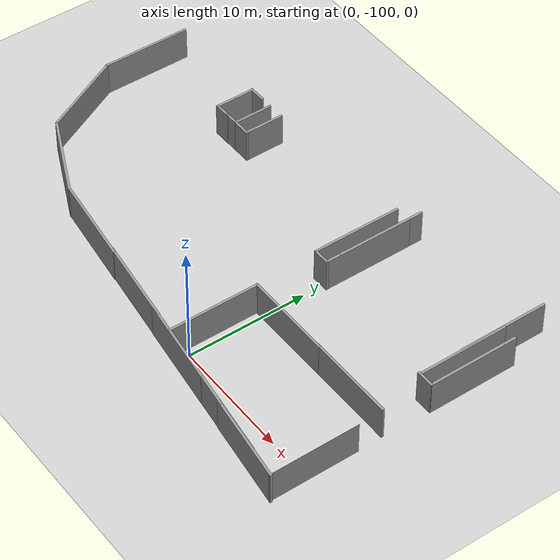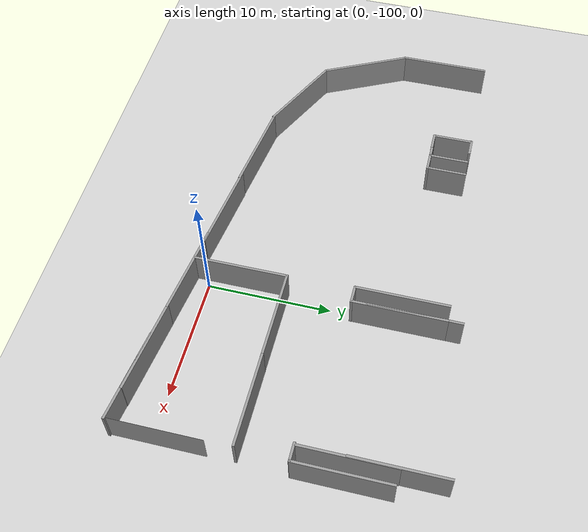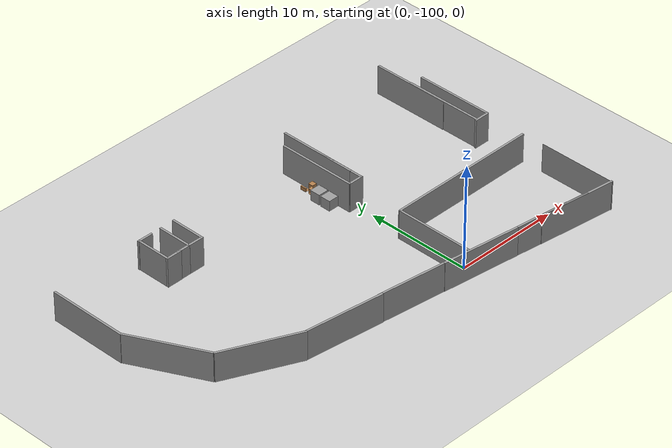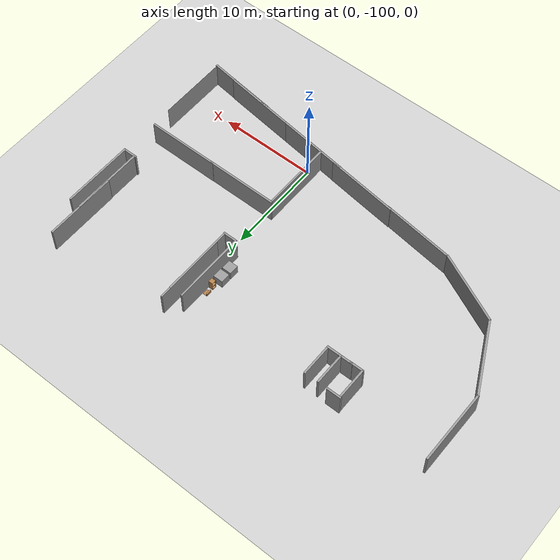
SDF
<sdf version="1.7">
 <world name="default">
  <model name="ground_plane">
   <static>1</static>
   <link name="link">
    <collision name="collision">
     <geometry><plane><normal>0 0 1</normal><size>100 100</size></plane></geometry>
     <surface>
      <contact><collide_bitmask>65535</collide_bitmask></contact>
      <friction><ode><mu>100</mu><mu2>50</mu2></ode></friction>
     </surface>
    </collision>
    <visual name="visual">
     <cast_shadows>0</cast_shadows>
     <geometry><plane><normal>0 0 1</normal><size>100 100</size></plane></geometry>
     <material>
      <script><uri>file://media/materials/scripts/gazebo.material</uri><name>Gazebo/Grey</name></script>
     </material>
    </visual>
   </link>
  </model>
  <model name="grey_wall_0_clone_0_clone_clone_clone_clone_0">
   <static>1</static>
   <link name="link">
    <pose>0 0 1.4 0 -0 0</pose>
    <collision name="collision"><geometry><box><size>7.5 0.2 2.8</size></box></geometry></collision>
    <visual name="visual">
     <cast_shadows>0</cast_shadows>
     <geometry><box><size>7.5 0.2 2.8</size></box></geometry>
     <material>
      <script>
       <uri>model://grey_wall/materials/scripts</uri>
       <uri>model://grey_wall/materials/textures</uri>
       <name>vrc/grey_wall</name>
      </script>
     </material>
    </visual>
   </link>
   <pose>-0.908982 -84.5866 0 0 -0 1.5708</pose>
  </model>
  <model name="grey_wall_0_clone_0_clone_clone_clone_clone_1_clone">
   <static>1</static>
   <link name="link">
    <pose>0 0 1.4 0 -0 0</pose>
    <collision name="collision"><geometry><box><size>7.5 0.2 2.8</size></box></geometry></collision>
    <visual name="visual">
     <cast_shadows>0</cast_shadows>
     <geometry><box><size>7.5 0.2 2.8</size></box></geometry>
     <material>
      <script>
       <uri>model://grey_wall/materials/scripts</uri>
       <uri>model://grey_wall/materials/textures</uri>
       <name>vrc/grey_wall</name>
      </script>
     </material>
    </visual>
   </link>
   <pose>0.398894 -83.3905 0 0 -0 1.5708</pose>
  </model>
  <model name="grey_wall_0_clone_0_clone_clone_clone_clone_1_clone_0">
   <static>1</static>
   <link name="link">
    <pose>0 0 1.4 0 -0 0</pose>
    <collision name="collision"><geometry><box><size>7.5 0.2 2.8</size></box></geometry></collision>
    <visual name="visual">
     <cast_shadows>0</cast_shadows>
     <geometry><box><size>7.5 0.2 2.8</size></box></geometry>
     <material>
      <script>
       <uri>model://grey_wall/materials/scripts</uri>
       <uri>model://grey_wall/materials/textures</uri>
       <name>vrc/grey_wall</name>
      </script>
     </material>
    </visual>
   </link>
   <pose>0.404001 -84.552 0 0 -0 1.5708</pose>
  </model>
  <model name="half_grey_wall_clone_clone_clone_0_clone_clone_0_clone_clone_0_clone_0_clone_4_clone_1_clone">
   <link name="link">
    <pose>0 0 1.4 0 -0 0</pose>
    <inertial>
     <mass>1</mass>
     <inertia><ixx>1</ixx><ixy>0</ixy><ixz>0</ixz><iyy>1</iyy><iyz>0</iyz><izz>1</izz></inertia>
    </inertial>
    <visual name="visual">
     <cast_shadows>0</cast_shadows>
     <geometry><box><size>1.5 0.2 2.8</size></box></geometry>
     <material>
      <script>
       <uri>model://grey_wall/materials/scripts</uri>
       <uri>model://grey_wall/materials/textures</uri>
       <name>vrc/grey_wall</name>
      </script>
      <shader type="pixel"><normal_map>__default__</normal_map></shader>
      <ambient>1 1 1 1</ambient>
      <diffuse>1 1 1 1</diffuse>
      <specular>0 0 0 1</specular>
      <emissive>0 0 0 1</emissive>
     </material>
    </visual>
    <collision name="collision">
     <geometry><box><size>1.5 0.2 2.8</size></box></geometry>
     <surface>
      <friction>
       <ode><mu>1</mu><mu2>1</mu2><fdir1>0 0 0</fdir1><slip1>0</slip1><slip2>0</slip2></ode>
       <torsional>
        <coefficient>1</coefficient>
        <patch_radius>0</patch_radius>
        <surface_radius>0</surface_radius>
        <use_patch_radius>1</use_patch_radius>
        <ode><slip>0</slip></ode>
       </torsional>
      </friction>
      <bounce><restitution_coefficient>0</restitution_coefficient><threshold>1e+06</threshold></bounce>
      <contact>
       <collide_without_contact>0</collide_without_contact>
       <collide_without_contact_bitmask>1</collide_without_contact_bitmask>
       <collide_bitmask>1</collide_bitmask>
       <ode>
        <soft_cfm>0</soft_cfm>
        <soft_erp>0.2</soft_erp>
        <kp>1e+13</kp>
        <kd>1</kd>
        <max_vel>0.01</max_vel>
        <min_depth>0</min_depth>
       </ode>
       <bullet>
        <split_impulse>1</split_impulse>
        <split_impulse_penetration_threshold>-0.01</split_impulse_penetration_threshold>
        <soft_cfm>0</soft_cfm>
        <soft_erp>0.2</soft_erp>
        <kp>1e+13</kp>
        <kd>1</kd>
       </bullet>
      </contact>
     </surface>
    </collision>
   </link>
   <static>1</static>
   <pose>-0.229987 -88.2983 0 0 0 -3.13942</pose>
  </model>
  <model name="unit_box_0">
   <pose>-1.52432 -85.4672 0.499995 0 1e-05 0</pose>
   <link name="link">
    <inertial>
     <mass>1</mass>
     <inertia>
      <ixx>0.166667</ixx>
      <ixy>0</ixy>
      <ixz>0</ixz>
      <iyy>0.166667</iyy>
      <iyz>0</iyz>
      <izz>0.166667</izz>
     </inertia>
    </inertial>
    <collision name="collision"><geometry><box><size>1 1 1</size></box></geometry></collision>
    <visual name="visual">
     <geometry><box><size>1 1 1</size></box></geometry>
     <material>
      <script><name>Gazebo/Grey</name><uri>file://media/materials/scripts/gazebo.material</uri></script>
     </material>
    </visual>
   </link>
  </model>
  <model name="unit_box_0_clone">
   <pose>-1.54452 -86.6339 0.499995 -1e-05 -0 5e-06</pose>
   <link name="link">
    <inertial>
     <mass>1</mass>
     <inertia>
      <ixx>0.166667</ixx>
      <ixy>0</ixy>
      <ixz>0</ixz>
      <iyy>0.166667</iyy>
      <iyz>0</iyz>
      <izz>0.166667</izz>
     </inertia>
    </inertial>
    <collision name="collision"><geometry><box><size>1 1 1</size></box></geometry></collision>
    <visual name="visual">
     <geometry><box><size>1 1 1</size></box></geometry>
     <material>
      <script><name>Gazebo/Grey</name><uri>file://media/materials/scripts/gazebo.material</uri></script>
     </material>
    </visual>
   </link>
  </model>
  <model name="cabinet">
   <static>1</static>
   <link name="cabinet_bottom_plate">
    <inertial>
     <pose>0 0 -1 0 -0 0</pose>
     <inertia><ixx>2.05</ixx><ixy>0</ixy><ixz>0</ixz><iyy>2.05</iyy><iyz>0</iyz><izz>2.05</izz></inertia>
     <mass>25</mass>
    </inertial>
    <collision name="cabinet_bottom_plate_geom">
     <pose>0 0 0.01 0 -0 0</pose>
     <geometry><box><size>0.45 0.45 0.02</size></box></geometry>
    </collision>
    <visual name="cabinet_bottom_plate_geom_visual">
     <pose>0 0 0.01 0 -0 0</pose>
     <geometry><box><size>0.45 0.45 0.02</size></box></geometry>
     <material>
      <script><uri>file://media/materials/scripts/gazebo.material</uri><name>Gazebo/Wood</name></script>
     </material>
    </visual>
    <collision name="cabinet_bottom_plate_geom_cabinet_back_plate">
     <pose>0.235 0 0.51 0 -0 0</pose>
     <geometry><box><size>0.02 0.45 1.02</size></box></geometry>
    </collision>
    <visual name="cabinet_bottom_plate_geom_cabinet_back_plate_visual">
     <pose>0.235 0 0.51 0 -0 0</pose>
     <geometry><box><size>0.02 0.45 1.02</size></box></geometry>
     <material>
      <script><uri>file://media/materials/scripts/gazebo.material</uri><name>Gazebo/Wood</name></script>
     </material>
    </visual>
    <collision name="cabinet_bottom_plate_geom_cabinet_left_plate">
     <pose>0 0.235 0.51 0 -0 0</pose>
     <geometry><box><size>0.45 0.02 1.02</size></box></geometry>
    </collision>
    <visual name="cabinet_bottom_plate_geom_cabinet_left_plate_visual">
     <pose>0 0.235 0.51 0 -0 0</pose>
     <geometry><box><size>0.45 0.02 1.02</size></box></geometry>
     <material>
      <script><uri>file://media/materials/scripts/gazebo.material</uri><name>Gazebo/Wood</name></script>
     </material>
    </visual>
    <collision name="cabinet_bottom_plate_geom_cabinet_middle_plate">
     <pose>0 0 0.51 0 -0 0</pose>
     <geometry><box><size>0.45 0.45 0.02</size></box></geometry>
    </collision>
    <visual name="cabinet_bottom_plate_geom_cabinet_middle_plate_visual">
     <pose>0 0 0.51 0 -0 0</pose>
     <geometry><box><size>0.45 0.45 0.02</size></box></geometry>
     <material>
      <script><uri>file://media/materials/scripts/gazebo.material</uri><name>Gazebo/Wood</name></script>
     </material>
    </visual>
    <collision name="cabinet_bottom_plate_geom_cabinet_right_plate">
     <pose>0 -0.235 0.51 0 -0 0</pose>
     <geometry><box><size>0.45 0.02 1.02</size></box></geometry>
    </collision>
    <visual name="cabinet_bottom_plate_geom_cabinet_right_plate_visual">
     <pose>0 -0.235 0.51 0 -0 0</pose>
     <geometry><box><size>0.45 0.02 1.02</size></box></geometry>
     <material>
      <script><uri>file://media/materials/scripts/gazebo.material</uri><name>Gazebo/Wood</name></script>
     </material>
    </visual>
    <collision name="cabinet_bottom_plate_geom_cabinet_top_plate">
     <pose>0 0 1.01 0 -0 0</pose>
     <geometry><box><size>0.45 0.45 0.02</size></box></geometry>
    </collision>
    <visual name="cabinet_bottom_plate_geom_cabinet_top_plate_visual">
     <pose>0 0 1.01 0 -0 0</pose>
     <geometry><box><size>0.45 0.45 0.02</size></box></geometry>
     <material>
      <script><uri>file://media/materials/scripts/gazebo.material</uri><name>Gazebo/Wood</name></script>
     </material>
    </visual>
   </link>
   <pose>-1.28424 -84.4729 0 0 -0 0</pose>
  </model>
  <model name="half_grey_wall_clone_clone_0_clone_clone_clone_clone_1_clone_0_clone_0">
   <link name="link">
    <pose>0 0 1.4 0 -0 0</pose>
    <inertial>
     <mass>1</mass>
     <inertia><ixx>1</ixx><ixy>0</ixy><ixz>0</ixz><iyy>1</iyy><iyz>0</iyz><izz>1</izz></inertia>
    </inertial>
    <visual name="visual">
     <cast_shadows>0</cast_shadows>
     <geometry><box><size>3.3 0.2 2.8</size></box></geometry>
     <material>
      <script>
       <uri>model://grey_wall/materials/scripts</uri>
       <uri>model://grey_wall/materials/textures</uri>
       <name>vrc/grey_wall</name>
      </script>
      <shader type="pixel"><normal_map>__default__</normal_map></shader>
      <ambient>1 1 1 1</ambient>
      <diffuse>1 1 1 1</diffuse>
      <specular>0 0 0 1</specular>
      <emissive>0 0 0 1</emissive>
     </material>
    </visual>
    <collision name="collision">
     <geometry><box><size>3.3 0.2 2.8</size></box></geometry>
     <surface>
      <friction>
       <ode><mu>1</mu><mu2>1</mu2><fdir1>0 0 0</fdir1><slip1>0</slip1><slip2>0</slip2></ode>
       <torsional>
        <coefficient>1</coefficient>
        <patch_radius>0</patch_radius>
        <surface_radius>0</surface_radius>
        <use_patch_radius>1</use_patch_radius>
        <ode><slip>0</slip></ode>
       </torsional>
      </friction>
      <bounce><restitution_coefficient>0</restitution_coefficient><threshold>1e+06</threshold></bounce>
      <contact>
       <collide_without_contact>0</collide_without_contact>
       <collide_without_contact_bitmask>1</collide_without_contact_bitmask>
       <collide_bitmask>1</collide_bitmask>
       <ode>
        <soft_cfm>0</soft_cfm>
        <soft_erp>0.2</soft_erp>
        <kp>1e+13</kp>
        <kd>1</kd>
        <max_vel>0.01</max_vel>
        <min_depth>0</min_depth>
       </ode>
       <bullet>
        <split_impulse>1</split_impulse>
        <split_impulse_penetration_threshold>-0.01</split_impulse_penetration_threshold>
        <soft_cfm>0</soft_cfm>
        <soft_erp>0.2</soft_erp>
        <kp>1e+13</kp>
        <kd>1</kd>
       </bullet>
      </contact>
     </surface>
    </collision>
   </link>
   <static>1</static>
   <pose>-14.1287 -83.3175 -0 0 0 -1.56959</pose>
  </model>
  <model name="half_grey_wall_clone_clone_clone_0_clone_clone_0_clone_clone_0_clone_0_clone_4_clone_1_clone_clone">
   <link name="link">
    <pose>0 0 1.4 0 -0 0</pose>
    <inertial>
     <mass>1</mass>
     <inertia><ixx>1</ixx><ixy>0</ixy><ixz>0</ixz><iyy>1</iyy><iyz>0</iyz><izz>1</izz></inertia>
    </inertial>
    <visual name="visual">
     <cast_shadows>0</cast_shadows>
     <geometry><box><size>1.5 0.2 2.8</size></box></geometry>
     <material>
      <script>
       <uri>model://grey_wall/materials/scripts</uri>
       <uri>model://grey_wall/materials/textures</uri>
       <name>vrc/grey_wall</name>
      </script>
      <shader type="pixel"><normal_map>__default__</normal_map></shader>
      <ambient>1 1 1 1</ambient>
      <diffuse>1 1 1 1</diffuse>
      <specular>0 0 0 1</specular>
      <emissive>0 0 0 1</emissive>
     </material>
    </visual>
    <collision name="collision">
     <geometry><box><size>1.5 0.2 2.8</size></box></geometry>
     <surface>
      <friction>
       <ode><mu>1</mu><mu2>1</mu2><fdir1>0 0 0</fdir1><slip1>0</slip1><slip2>0</slip2></ode>
       <torsional>
        <coefficient>1</coefficient>
        <patch_radius>0</patch_radius>
        <surface_radius>0</surface_radius>
        <use_patch_radius>1</use_patch_radius>
        <ode><slip>0</slip></ode>
       </torsional>
      </friction>
      <bounce><restitution_coefficient>0</restitution_coefficient><threshold>1e+06</threshold></bounce>
      <contact>
       <collide_without_contact>0</collide_without_contact>
       <collide_without_contact_bitmask>1</collide_without_contact_bitmask>
       <collide_bitmask>1</collide_bitmask>
       <ode>
        <soft_cfm>0</soft_cfm>
        <soft_erp>0.2</soft_erp>
        <kp>1e+13</kp>
        <kd>1</kd>
        <max_vel>0.01</max_vel>
        <min_depth>0</min_depth>
       </ode>
       <bullet>
        <split_impulse>1</split_impulse>
        <split_impulse_penetration_threshold>-0.01</split_impulse_penetration_threshold>
        <soft_cfm>0</soft_cfm>
        <soft_erp>0.2</soft_erp>
        <kp>1e+13</kp>
        <kd>1</kd>
       </bullet>
      </contact>
     </surface>
    </collision>
   </link>
   <static>1</static>
   <pose>-14.7739 -84.9454 0 0 0 -3.13942</pose>
  </model>
  <model name="half_grey_wall_clone_clone_0_clone_clone_clone_clone_1_clone_0_clone_0_clone">
   <link name="link">
    <pose>0 0 1.4 0 -0 0</pose>
    <inertial>
     <mass>1</mass>
     <inertia><ixx>1</ixx><ixy>0</ixy><ixz>0</ixz><iyy>1</iyy><iyz>0</iyz><izz>1</izz></inertia>
    </inertial>
    <visual name="visual">
     <cast_shadows>0</cast_shadows>
     <geometry><box><size>3.3 0.2 2.8</size></box></geometry>
     <material>
      <script>
       <uri>model://grey_wall/materials/scripts</uri>
       <uri>model://grey_wall/materials/textures</uri>
       <name>vrc/grey_wall</name>
      </script>
      <shader type="pixel"><normal_map>__default__</normal_map></shader>
      <ambient>1 1 1 1</ambient>
      <diffuse>1 1 1 1</diffuse>
      <specular>0 0 0 1</specular>
      <emissive>0 0 0 1</emissive>
     </material>
    </visual>
    <collision name="collision">
     <geometry><box><size>3.3 0.2 2.8</size></box></geometry>
     <surface>
      <friction>
       <ode><mu>1</mu><mu2>1</mu2><fdir1>0 0 0</fdir1><slip1>0</slip1><slip2>0</slip2></ode>
       <torsional>
        <coefficient>1</coefficient>
        <patch_radius>0</patch_radius>
        <surface_radius>0</surface_radius>
        <use_patch_radius>1</use_patch_radius>
        <ode><slip>0</slip></ode>
       </torsional>
      </friction>
      <bounce><restitution_coefficient>0</restitution_coefficient><threshold>1e+06</threshold></bounce>
      <contact>
       <collide_without_contact>0</collide_without_contact>
       <collide_without_contact_bitmask>1</collide_without_contact_bitmask>
       <collide_bitmask>1</collide_bitmask>
       <ode>
        <soft_cfm>0</soft_cfm>
        <soft_erp>0.2</soft_erp>
        <kp>1e+13</kp>
        <kd>1</kd>
        <max_vel>0.01</max_vel>
        <min_depth>0</min_depth>
       </ode>
       <bullet>
        <split_impulse>1</split_impulse>
        <split_impulse_penetration_threshold>-0.01</split_impulse_penetration_threshold>
        <soft_cfm>0</soft_cfm>
        <soft_erp>0.2</soft_erp>
        <kp>1e+13</kp>
        <kd>1</kd>
       </bullet>
      </contact>
     </surface>
    </collision>
   </link>
   <static>1</static>
   <pose>-15.5344 -83.3565 -0 0 0 -1.56959</pose>
  </model>
  <model name="wooden_case_metal_peg">
   <frame name="wooden_case::__model__" attached_to="wooden_case::base">
    <pose relative_to="__model__">0 0 0 0 -0 0</pose>
   </frame>
   <link name="wooden_case::base">
    <pose relative_to="wooden_case::__model__">0 0 0.024 0 -0 0</pose>
    <inertial>
     <pose>-0.022184 0 0.171592 0 -0 0</pose>
     <mass>3.96264</mass>
     <inertia>
      <ixx>0.213536</ixx>
      <ixy>0</ixy>
      <ixz>0.000779377</ixz>
      <iyy>0.0708943</iyy>
      <iyz>0</iyz>
      <izz>0.154604</izz>
     </inertia>
    </inertial>
    <collision name="collision_back">
     <pose>-0.053975 0 0.1778 0 -0 0</pose>
     <geometry><box><size>0.01905 0.5461 0.3175</size></box></geometry>
     <surface>
      <contact>
       <poissons_ratio>0.347</poissons_ratio>
       <elastic_modulus>8.8e+09</elastic_modulus>
       <ode><kp>100000</kp><kd>100</kd><max_vel>100</max_vel><min_depth>0.001</min_depth></ode>
      </contact>
      <friction>
       <torsional>
        <coefficient>1</coefficient>
        <use_patch_radius>0</use_patch_radius>
        <surface_radius>0.01</surface_radius>
       </torsional>
      </friction>
     </surface>
    </collision>
    <visual name="visual_back">
     <pose>-0.053975 0 0.1778 0 -0 0</pose>
     <geometry><box><size>0.01905 0.5461 0.3175</size></box></geometry>
     <material>
      <script><uri>file://media/materials/scripts/gazebo.material</uri><name>Gazebo/Wood</name></script>
     </material>
    </visual>
    <collision name="collision_bottom">
     <pose>0 0 0.009525 0 -0 0</pose>
     <geometry><box><size>0.127 0.5842 0.01905</size></box></geometry>
     <surface>
      <contact>
       <poissons_ratio>0.347</poissons_ratio>
       <elastic_modulus>8.8e+09</elastic_modulus>
       <ode><kp>100000</kp><kd>100</kd><max_vel>100</max_vel><min_depth>0.001</min_depth></ode>
      </contact>
      <friction>
       <torsional>
        <coefficient>1</coefficient>
        <use_patch_radius>0</use_patch_radius>
        <surface_radius>0.01</surface_radius>
       </torsional>
      </friction>
     </surface>
    </collision>
    <visual name="visual_bottom">
     <pose>0 0 0.009525 0 -0 0</pose>
     <geometry><box><size>0.127 0.5842 0.01905</size></box></geometry>
     <material>
      <script><uri>file://media/materials/scripts/gazebo.material</uri><name>Gazebo/Wood</name></script>
     </material>
    </visual>
    <collision name="collision_top">
     <pose>0 0 0.346075 0 -0 0</pose>
     <geometry><box><size>0.127 0.5842 0.01905</size></box></geometry>
     <surface>
      <contact>
       <poissons_ratio>0.347</poissons_ratio>
       <elastic_modulus>8.8e+09</elastic_modulus>
       <ode><kp>100000</kp><kd>100</kd><max_vel>100</max_vel><min_depth>0.001</min_depth></ode>
      </contact>
      <friction>
       <torsional>
        <coefficient>1</coefficient>
        <use_patch_radius>0</use_patch_radius>
        <surface_radius>0.01</surface_radius>
       </torsional>
      </friction>
     </surface>
    </collision>
    <visual name="visual_top">
     <pose>0 0 0.346075 0 -0 0</pose>
     <geometry><box><size>0.127 0.5842 0.01905</size></box></geometry>
     <material>
      <script><uri>file://media/materials/scripts/gazebo.material</uri><name>Gazebo/Wood</name></script>
     </material>
    </visual>
    <collision name="collision_left">
     <pose>0 -0.282575 0.1778 0 -0 0</pose>
     <geometry><box><size>0.127 0.01905 0.3175</size></box></geometry>
     <surface>
      <contact>
       <poissons_ratio>0.347</poissons_ratio>
       <elastic_modulus>8.8e+09</elastic_modulus>
       <ode><kp>100000</kp><kd>100</kd><max_vel>100</max_vel><min_depth>0.001</min_depth></ode>
      </contact>
      <friction>
       <torsional>
        <coefficient>1</coefficient>
        <use_patch_radius>0</use_patch_radius>
        <surface_radius>0.01</surface_radius>
       </torsional>
      </friction>
     </surface>
    </collision>
    <visual name="visual_left">
     <pose>0 -0.282575 0.1778 0 -0 0</pose>
     <geometry><box><size>0.127 0.01905 0.3175</size></box></geometry>
     <material>
      <script><uri>file://media/materials/scripts/gazebo.material</uri><name>Gazebo/Wood</name></script>
     </material>
    </visual>
    <collision name="collision_right">
     <pose>0 0.282575 0.1778 0 -0 0</pose>
     <geometry><box><size>0.127 0.01905 0.3175</size></box></geometry>
     <surface>
      <contact>
       <poissons_ratio>0.347</poissons_ratio>
       <elastic_modulus>8.8e+09</elastic_modulus>
       <ode><kp>100000</kp><kd>100</kd><max_vel>100</max_vel><min_depth>0.001</min_depth></ode>
      </contact>
      <friction>
       <torsional>
        <coefficient>1</coefficient>
        <use_patch_radius>0</use_patch_radius>
        <surface_radius>0.01</surface_radius>
       </torsional>
      </friction>
     </surface>
    </collision>
    <visual name="visual_right">
     <pose>0 0.282575 0.1778 0 -0 0</pose>
     <geometry><box><size>0.127 0.01905 0.3175</size></box></geometry>
     <material>
      <script><uri>file://media/materials/scripts/gazebo.material</uri><name>Gazebo/Wood</name></script>
     </material>
    </visual>
    <collision name="collision_block_left">
     <pose>0.0095 -0.2151 -0.012 0 -0 0</pose>
     <geometry><box><size>0.108 0.05 0.024</size></box></geometry>
     <surface>
      <contact>
       <poissons_ratio>0.347</poissons_ratio>
       <elastic_modulus>8.8e+09</elastic_modulus>
       <ode><kp>100000</kp><kd>100</kd><max_vel>100</max_vel><min_depth>0.001</min_depth></ode>
      </contact>
      <friction>
       <torsional>
        <coefficient>1</coefficient>
        <use_patch_radius>0</use_patch_radius>
        <surface_radius>0.01</surface_radius>
       </torsional>
      </friction>
     </surface>
    </collision>
    <visual name="visual_block_left">
     <pose>0.0095 -0.2151 -0.012 0 -0 0</pose>
     <geometry><box><size>0.108 0.05 0.024</size></box></geometry>
     <material>
      <script><uri>file://media/materials/scripts/gazebo.material</uri><name>Gazebo/Wood</name></script>
     </material>
    </visual>
    <collision name="collision_block_right">
     <pose>0.0095 0.2151 -0.012 0 -0 0</pose>
     <geometry><box><size>0.108 0.05 0.024</size></box></geometry>
     <surface>
      <contact>
       <poissons_ratio>0.347</poissons_ratio>
       <elastic_modulus>8.8e+09</elastic_modulus>
       <ode><kp>100000</kp><kd>100</kd><max_vel>100</max_vel><min_depth>0.001</min_depth></ode>
      </contact>
      <friction>
       <torsional>
        <coefficient>1</coefficient>
        <use_patch_radius>0</use_patch_radius>
        <surface_radius>0.01</surface_radius>
       </torsional>
      </friction>
     </surface>
    </collision>
    <visual name="visual_block_right">
     <pose>0.0095 0.2151 -0.012 0 -0 0</pose>
     <geometry><box><size>0.108 0.05 0.024</size></box></geometry>
     <material>
      <script><uri>file://media/materials/scripts/gazebo.material</uri><name>Gazebo/Wood</name></script>
     </material>
    </visual>
   </link>
   <link name="wooden_case::lid">
    <pose relative_to="wooden_case::__model__">0.243775 0 0.009525 0 -0 0</pose>
    <inertial>
     <mass>1.97874</mass>
     <inertia>
      <ixx>0.0563367</ixx>
      <ixy>0</ixy>
      <ixz>0</ixz>
      <iyy>0.020911</iyy>
      <iyz>0</iyz>
      <izz>0.0771281</izz>
     </inertia>
    </inertial>
    <collision name="collision">
     <geometry><box><size>0.3556 0.5842 0.01905</size></box></geometry>
     <surface>
      <contact>
       <poissons_ratio>0.347</poissons_ratio>
       <elastic_modulus>8.8e+09</elastic_modulus>
       <ode><kp>100000</kp><kd>100</kd><max_vel>100</max_vel><min_depth>0.001</min_depth></ode>
      </contact>
      <friction>
       <torsional>
        <coefficient>1</coefficient>
        <use_patch_radius>0</use_patch_radius>
        <surface_radius>0.01</surface_radius>
       </torsional>
      </friction>
     </surface>
    </collision>
    <visual name="visual">
     <geometry><box><size>0.3556 0.5842 0.01905</size></box></geometry>
     <material>
      <script><uri>file://media/materials/scripts/gazebo.material</uri><name>Gazebo/Wood</name></script>
     </material>
    </visual>
    <visual name="tee_nut_1">
     <pose>0.122 -0.216 0 0 -0 0</pose>
     <geometry><cylinder><radius>0.00635</radius><length>0.0192405</length></cylinder></geometry>
     <material>
      <script><uri>file://media/materials/scripts/gazebo.material</uri><name>Gazebo/Grey</name></script>
     </material>
    </visual>
    <visual name="tee_nut_2">
     <pose>0.122 -0.088 0 0 -0 0</pose>
     <geometry><cylinder><radius>0.00635</radius><length>0.0192405</length></cylinder></geometry>
     <material>
      <script><uri>file://media/materials/scripts/gazebo.material</uri><name>Gazebo/Grey</name></script>
     </material>
    </visual>
    <visual name="tee_nut_3">
     <pose>0.122 0.088 0 0 -0 0</pose>
     <geometry><cylinder><radius>0.00635</radius><length>0.0192405</length></cylinder></geometry>
     <material>
      <script><uri>file://media/materials/scripts/gazebo.material</uri><name>Gazebo/Grey</name></script>
     </material>
    </visual>
    <visual name="tee_nut_4">
     <pose>0.122 0.216 0 0 -0 0</pose>
     <geometry><cylinder><radius>0.00635</radius><length>0.0192405</length></cylinder></geometry>
     <material>
      <script><uri>file://media/materials/scripts/gazebo.material</uri><name>Gazebo/Grey</name></script>
     </material>
    </visual>
   </link>
   <joint name="wooden_case::lid_hinge" type="revolute">
    <pose>-0.1778 0 0.01905 0 -0 0</pose>
    <parent>wooden_case::base</parent>
    <child>wooden_case::lid</child>
    <axis>
     <xyz>0 1 0</xyz>
     <limit><upper>0.523599</upper><lower>-1.5708</lower></limit>
     <dynamics><spring_reference>0</spring_reference><spring_stiffness>0</spring_stiffness></dynamics>
    </axis>
   </joint>
   <frame name="peg::__model__" attached_to="peg::link">
    <pose relative_to="__model__">0.365774 0.216 0.01905 0 -0 0</pose>
   </frame>
   <link name="peg::link">
    <pose relative_to="peg::__model__">0 0 0.031 0 -0 0</pose>
    <inertial>
     <mass>0.0121</mass>
     <inertia>
      <ixx>3.90898e-06</ixx>
      <ixy>0</ixy>
      <ixz>0</ixz>
      <iyy>3.90898e-06</iyy>
      <iyz>0</iyz>
      <izz>6.58845e-08</izz>
     </inertia>
    </inertial>
    <collision name="collision">
     <geometry><cylinder><radius>0.0033</radius><length>0.062</length></cylinder></geometry>
     <surface>
      <contact>
       <poissons_ratio>0.305</poissons_ratio>
       <elastic_modulus>2e+11</elastic_modulus>
       <ode><kp>100000</kp><kd>100</kd><max_vel>100</max_vel><min_depth>0.001</min_depth></ode>
      </contact>
      <friction>
       <torsional>
        <coefficient>1</coefficient>
        <use_patch_radius>0</use_patch_radius>
        <surface_radius>0.01</surface_radius>
       </torsional>
      </friction>
     </surface>
    </collision>
    <visual name="visual">
     <geometry><cylinder><radius>0.0033</radius><length>0.062</length></cylinder></geometry>
     <material>
      <script><uri>file://media/materials/scripts/gazebo.material</uri><name>Gazebo/Grey</name></script>
     </material>
    </visual>
   </link>
   <joint name="case_peg" type="revolute">
    <child>peg::link</child>
    <parent>wooden_case::lid</parent>
    <axis>
     <xyz>0 0 1</xyz>
     <limit><upper>0</upper><lower>0</lower></limit>
     <dynamics><spring_reference>0</spring_reference><spring_stiffness>0</spring_stiffness></dynamics>
    </axis>
   </joint>
   <pose>-1.50003 -83.6624 -0.001057 -0 -0.000426 2e-06</pose>
  </model>
  <model name="half_grey_wall_clone_clone_clone_0_clone_clone_0_clone_clone_0_clone_0_clone_4_clone_1_clone_clone_clone_clone_0">
   <link name="link">
    <pose>0 0 1.4 0 -0 0</pose>
    <inertial>
     <mass>1</mass>
     <inertia><ixx>1</ixx><ixy>0</ixy><ixz>0</ixz><iyy>1</iyy><iyz>0</iyz><izz>1</izz></inertia>
    </inertial>
    <visual name="visual">
     <cast_shadows>0</cast_shadows>
     <geometry><box><size>1.5 0.2 2.8</size></box></geometry>
     <material>
      <script>
       <uri>model://grey_wall/materials/scripts</uri>
       <uri>model://grey_wall/materials/textures</uri>
       <name>vrc/grey_wall</name>
      </script>
      <shader type="pixel"><normal_map>__default__</normal_map></shader>
      <ambient>1 1 1 1</ambient>
      <diffuse>1 1 1 1</diffuse>
      <specular>0 0 0 1</specular>
      <emissive>0 0 0 1</emissive>
     </material>
    </visual>
    <collision name="collision">
     <geometry><box><size>1.5 0.2 2.8</size></box></geometry>
     <surface>
      <friction>
       <ode><mu>1</mu><mu2>1</mu2><fdir1>0 0 0</fdir1><slip1>0</slip1><slip2>0</slip2></ode>
       <torsional>
        <coefficient>1</coefficient>
        <patch_radius>0</patch_radius>
        <surface_radius>0</surface_radius>
        <use_patch_radius>1</use_patch_radius>
        <ode><slip>0</slip></ode>
       </torsional>
      </friction>
      <bounce><restitution_coefficient>0</restitution_coefficient><threshold>1e+06</threshold></bounce>
      <contact>
       <collide_without_contact>0</collide_without_contact>
       <collide_without_contact_bitmask>1</collide_without_contact_bitmask>
       <collide_bitmask>1</collide_bitmask>
       <ode>
        <soft_cfm>0</soft_cfm>
        <soft_erp>0.2</soft_erp>
        <kp>1e+13</kp>
        <kd>1</kd>
        <max_vel>0.01</max_vel>
        <min_depth>0</min_depth>
       </ode>
       <bullet>
        <split_impulse>1</split_impulse>
        <split_impulse_penetration_threshold>-0.01</split_impulse_penetration_threshold>
        <soft_cfm>0</soft_cfm>
        <soft_erp>0.2</soft_erp>
        <kp>1e+13</kp>
        <kd>1</kd>
       </bullet>
      </contact>
     </surface>
    </collision>
   </link>
   <static>1</static>
   <pose>-17.2396 -81.7596 0 0 0 -3.13942</pose>
  </model>
  <model name="half_grey_wall_clone_clone_0_clone_clone_clone_clone_1_clone_0_clone_0_clone_clone">
   <link name="link">
    <pose>0 0 1.4 0 -0 0</pose>
    <inertial>
     <mass>1</mass>
     <inertia><ixx>1</ixx><ixy>0</ixy><ixz>0</ixz><iyy>1</iyy><iyz>0</iyz><izz>1</izz></inertia>
    </inertial>
    <visual name="visual">
     <cast_shadows>0</cast_shadows>
     <geometry><box><size>3.3 0.2 2.8</size></box></geometry>
     <material>
      <script>
       <uri>model://grey_wall/materials/scripts</uri>
       <uri>model://grey_wall/materials/textures</uri>
       <name>vrc/grey_wall</name>
      </script>
      <shader type="pixel"><normal_map>__default__</normal_map></shader>
      <ambient>1 1 1 1</ambient>
      <diffuse>1 1 1 1</diffuse>
      <specular>0 0 0 1</specular>
      <emissive>0 0 0 1</emissive>
     </material>
    </visual>
    <collision name="collision">
     <geometry><box><size>3.3 0.2 2.8</size></box></geometry>
     <surface>
      <friction>
       <ode><mu>1</mu><mu2>1</mu2><fdir1>0 0 0</fdir1><slip1>0</slip1><slip2>0</slip2></ode>
       <torsional>
        <coefficient>1</coefficient>
        <patch_radius>0</patch_radius>
        <surface_radius>0</surface_radius>
        <use_patch_radius>1</use_patch_radius>
        <ode><slip>0</slip></ode>
       </torsional>
      </friction>
      <bounce><restitution_coefficient>0</restitution_coefficient><threshold>1e+06</threshold></bounce>
      <contact>
       <collide_without_contact>0</collide_without_contact>
       <collide_without_contact_bitmask>1</collide_without_contact_bitmask>
       <collide_bitmask>1</collide_bitmask>
       <ode>
        <soft_cfm>0</soft_cfm>
        <soft_erp>0.2</soft_erp>
        <kp>1e+13</kp>
        <kd>1</kd>
        <max_vel>0.01</max_vel>
        <min_depth>0</min_depth>
       </ode>
       <bullet>
        <split_impulse>1</split_impulse>
        <split_impulse_penetration_threshold>-0.01</split_impulse_penetration_threshold>
        <soft_cfm>0</soft_cfm>
        <soft_erp>0.2</soft_erp>
        <kp>1e+13</kp>
        <kd>1</kd>
       </bullet>
      </contact>
     </surface>
    </collision>
   </link>
   <static>1</static>
   <pose>-17.8579 -83.3319 -0 0 0 -1.56959</pose>
  </model>
  <model name="half_grey_wall_clone_clone_clone_0_clone_clone_0_clone_clone_0_clone_0_clone_4_clone_1_clone_clone_clone_0">
   <link name="link">
    <pose>0 0 1.4 0 -0 0</pose>
    <inertial>
     <mass>1</mass>
     <inertia><ixx>1</ixx><ixy>0</ixy><ixz>0</ixz><iyy>1</iyy><iyz>0</iyz><izz>1</izz></inertia>
    </inertial>
    <visual name="visual">
     <cast_shadows>0</cast_shadows>
     <geometry><box><size>1.5 0.2 2.8</size></box></geometry>
     <material>
      <script>
       <uri>model://grey_wall/materials/scripts</uri>
       <uri>model://grey_wall/materials/textures</uri>
       <name>vrc/grey_wall</name>
      </script>
      <shader type="pixel"><normal_map>__default__</normal_map></shader>
      <ambient>1 1 1 1</ambient>
      <diffuse>1 1 1 1</diffuse>
      <specular>0 0 0 1</specular>
      <emissive>0 0 0 1</emissive>
     </material>
    </visual>
    <collision name="collision">
     <geometry><box><size>1.5 0.2 2.8</size></box></geometry>
     <surface>
      <friction>
       <ode><mu>1</mu><mu2>1</mu2><fdir1>0 0 0</fdir1><slip1>0</slip1><slip2>0</slip2></ode>
       <torsional>
        <coefficient>1</coefficient>
        <patch_radius>0</patch_radius>
        <surface_radius>0</surface_radius>
        <use_patch_radius>1</use_patch_radius>
        <ode><slip>0</slip></ode>
       </torsional>
      </friction>
      <bounce><restitution_coefficient>0</restitution_coefficient><threshold>1e+06</threshold></bounce>
      <contact>
       <collide_without_contact>0</collide_without_contact>
       <collide_without_contact_bitmask>1</collide_without_contact_bitmask>
       <collide_bitmask>1</collide_bitmask>
       <ode>
        <soft_cfm>0</soft_cfm>
        <soft_erp>0.2</soft_erp>
        <kp>1e+13</kp>
        <kd>1</kd>
        <max_vel>0.01</max_vel>
        <min_depth>0</min_depth>
       </ode>
       <bullet>
        <split_impulse>1</split_impulse>
        <split_impulse_penetration_threshold>-0.01</split_impulse_penetration_threshold>
        <soft_cfm>0</soft_cfm>
        <soft_erp>0.2</soft_erp>
        <kp>1e+13</kp>
        <kd>1</kd>
       </bullet>
      </contact>
     </surface>
    </collision>
   </link>
   <static>1</static>
   <pose>-16.0576 -84.9477 0 0 0 -3.13942</pose>
  </model>
  <model name="half_grey_wall_clone_clone_clone_0_clone_clone_0_clone_clone_0_clone_0_clone_4_clone_1_clone_clone_clone_1">
   <link name="link">
    <pose>0 0 1.4 0 -0 0</pose>
    <inertial>
     <mass>1</mass>
     <inertia><ixx>1</ixx><ixy>0</ixy><ixz>0</ixz><iyy>1</iyy><iyz>0</iyz><izz>1</izz></inertia>
    </inertial>
    <visual name="visual">
     <cast_shadows>0</cast_shadows>
     <geometry><box><size>1.5 0.2 2.8</size></box></geometry>
     <material>
      <script>
       <uri>model://grey_wall/materials/scripts</uri>
       <uri>model://grey_wall/materials/textures</uri>
       <name>vrc/grey_wall</name>
      </script>
      <shader type="pixel"><normal_map>__default__</normal_map></shader>
      <ambient>1 1 1 1</ambient>
      <diffuse>1 1 1 1</diffuse>
      <specular>0 0 0 1</specular>
      <emissive>0 0 0 1</emissive>
     </material>
    </visual>
    <collision name="collision">
     <geometry><box><size>1.5 0.2 2.8</size></box></geometry>
     <surface>
      <friction>
       <ode><mu>1</mu><mu2>1</mu2><fdir1>0 0 0</fdir1><slip1>0</slip1><slip2>0</slip2></ode>
       <torsional>
        <coefficient>1</coefficient>
        <patch_radius>0</patch_radius>
        <surface_radius>0</surface_radius>
        <use_patch_radius>1</use_patch_radius>
        <ode><slip>0</slip></ode>
       </torsional>
      </friction>
      <bounce><restitution_coefficient>0</restitution_coefficient><threshold>1e+06</threshold></bounce>
      <contact>
       <collide_without_contact>0</collide_without_contact>
       <collide_without_contact_bitmask>1</collide_without_contact_bitmask>
       <collide_bitmask>1</collide_bitmask>
       <ode>
        <soft_cfm>0</soft_cfm>
        <soft_erp>0.2</soft_erp>
        <kp>1e+13</kp>
        <kd>1</kd>
        <max_vel>0.01</max_vel>
        <min_depth>0</min_depth>
       </ode>
       <bullet>
        <split_impulse>1</split_impulse>
        <split_impulse_penetration_threshold>-0.01</split_impulse_penetration_threshold>
        <soft_cfm>0</soft_cfm>
        <soft_erp>0.2</soft_erp>
        <kp>1e+13</kp>
        <kd>1</kd>
       </bullet>
      </contact>
     </surface>
    </collision>
   </link>
   <static>1</static>
   <pose>-17.2077 -84.9772 0 0 0 -3.13942</pose>
  </model>
  <model name="grey_wall_0_clone_0_clone_clone_0_clone_0">
   <static>1</static>
   <link name="link">
    <pose>0 0 1.4 0 -0 0</pose>
    <collision name="collision"><geometry><box><size>7.5 0.2 2.8</size></box></geometry></collision>
    <visual name="visual">
     <cast_shadows>0</cast_shadows>
     <geometry><box><size>7.5 0.2 2.8</size></box></geometry>
     <material>
      <script>
       <uri>model://grey_wall/materials/scripts</uri>
       <uri>model://grey_wall/materials/textures</uri>
       <name>vrc/grey_wall</name>
      </script>
     </material>
    </visual>
   </link>
   <pose>-26.8378 -85.5501 0 0 -0 1.5708</pose>
  </model>
  <model name="grey_wall_0_clone_0_clone_clone_0_clone_0_clone">
   <static>1</static>
   <link name="link">
    <pose>0 0 1.4 0 -0 0</pose>
    <collision name="collision"><geometry><box><size>7.5 0.2 2.8</size></box></geometry></collision>
    <visual name="visual">
     <cast_shadows>0</cast_shadows>
     <geometry><box><size>7.5 0.2 2.8</size></box></geometry>
     <material>
      <script>
       <uri>model://grey_wall/materials/scripts</uri>
       <uri>model://grey_wall/materials/textures</uri>
       <name>vrc/grey_wall</name>
      </script>
     </material>
    </visual>
   </link>
   <pose>-25.1515 -92.5766 0 0 -0 2.03363</pose>
  </model>
  <model name="grey_wall_0_clone_0_clone_clone_0_clone_0_clone_clone">
   <static>1</static>
   <link name="link">
    <pose>0 0 1.4 0 -0 0</pose>
    <collision name="collision"><geometry><box><size>7.5 0.2 2.8</size></box></geometry></collision>
    <visual name="visual">
     <cast_shadows>0</cast_shadows>
     <geometry><box><size>7.5 0.2 2.8</size></box></geometry>
     <material>
      <script>
       <uri>model://grey_wall/materials/scripts</uri>
       <uri>model://grey_wall/materials/textures</uri>
       <name>vrc/grey_wall</name>
      </script>
     </material>
    </visual>
   </link>
   <pose>-20.0953 -97.541 0 0 -0 2.70421</pose>
  </model>
  <model name="grey_wall_0_clone_0_clone_clone_0_clone_0_clone_clone_clone">
   <static>1</static>
   <link name="link">
    <pose>0 0 1.4 0 -0 0</pose>
    <collision name="collision"><geometry><box><size>7.5 0.2 2.8</size></box></geometry></collision>
    <visual name="visual">
     <cast_shadows>0</cast_shadows>
     <geometry><box><size>7.5 0.2 2.8</size></box></geometry>
     <material>
      <script>
       <uri>model://grey_wall/materials/scripts</uri>
       <uri>model://grey_wall/materials/textures</uri>
       <name>vrc/grey_wall</name>
      </script>
     </material>
    </visual>
   </link>
   <pose>-13.037 -99.5555 0 0 -0 3.01194</pose>
  </model>
  <model name="grey_wall_0_clone_0_clone_clone_0_clone_0_clone_clone_clone_clone">
   <static>1</static>
   <link name="link">
    <pose>0 0 1.4 0 -0 0</pose>
    <collision name="collision"><geometry><box><size>7.5 0.2 2.8</size></box></geometry></collision>
    <visual name="visual">
     <cast_shadows>0</cast_shadows>
     <geometry><box><size>7.5 0.2 2.8</size></box></geometry>
     <material>
      <script>
       <uri>model://grey_wall/materials/scripts</uri>
       <uri>model://grey_wall/materials/textures</uri>
       <name>vrc/grey_wall</name>
      </script>
     </material>
    </visual>
   </link>
   <pose>-6.07632 -100.423 0 0 -0 3.01194</pose>
  </model>
  <model name="grey_wall_0_clone_0_clone_clone_0_clone_0_clone_clone_clone_clone_clone">
   <static>1</static>
   <link name="link">
    <pose>0 0 1.4 0 -0 0</pose>
    <collision name="collision"><geometry><box><size>7.5 0.2 2.8</size></box></geometry></collision>
    <visual name="visual">
     <cast_shadows>0</cast_shadows>
     <geometry><box><size>7.5 0.2 2.8</size></box></geometry>
     <material>
      <script>
       <uri>model://grey_wall/materials/scripts</uri>
       <uri>model://grey_wall/materials/textures</uri>
       <name>vrc/grey_wall</name>
      </script>
     </material>
    </visual>
   </link>
   <pose>0.481418 -101.3 0 0 -0 3.01194</pose>
  </model>
  <model name="grey_wall_0_clone_0_clone_clone_clone_clone_0_clone">
   <static>1</static>
   <link name="link">
    <pose>0 0 1.4 0 -0 0</pose>
    <collision name="collision"><geometry><box><size>7.5 0.2 2.8</size></box></geometry></collision>
    <visual name="visual">
     <cast_shadows>0</cast_shadows>
     <geometry><box><size>7.5 0.2 2.8</size></box></geometry>
     <material>
      <script>
       <uri>model://grey_wall/materials/scripts</uri>
       <uri>model://grey_wall/materials/textures</uri>
       <name>vrc/grey_wall</name>
      </script>
     </material>
    </visual>
   </link>
   <pose>-0.672272 -97.3988 0 0 -0 1.5708</pose>
  </model>
  <model name="grey_wall_1_clone_clone_4_clone_0_clone_clone_clone">
   <static>1</static>
   <link name="link">
    <pose>0 0 1.4 0 -0 0</pose>
    <collision name="collision"><geometry><box><size>7.5 0.2 2.8</size></box></geometry></collision>
    <visual name="visual">
     <cast_shadows>0</cast_shadows>
     <geometry><box><size>7.5 0.2 2.8</size></box></geometry>
     <material>
      <script>
       <uri>model://grey_wall/materials/scripts</uri>
       <uri>model://grey_wall/materials/textures</uri>
       <name>vrc/grey_wall</name>
      </script>
     </material>
    </visual>
   </link>
   <pose>2.97811 -93.6515 0 0 -0 0</pose>
  </model>
  <model name="grey_wall_1_clone_clone_4_clone_0_clone_clone_clone_clone">
   <static>1</static>
   <link name="link">
    <pose>0 0 1.4 0 -0 0</pose>
    <collision name="collision"><geometry><box><size>7.5 0.2 2.8</size></box></geometry></collision>
    <visual name="visual">
     <cast_shadows>0</cast_shadows>
     <geometry><box><size>7.5 0.2 2.8</size></box></geometry>
     <material>
      <script>
       <uri>model://grey_wall/materials/scripts</uri>
       <uri>model://grey_wall/materials/textures</uri>
       <name>vrc/grey_wall</name>
      </script>
     </material>
    </visual>
   </link>
   <pose>10.1246 -93.6413 0 0 -0 0</pose>
  </model>
  <model name="grey_wall_0_clone_0_clone_clone_0_clone_0_clone_clone_clone_clone_clone_clone">
   <static>1</static>
   <link name="link">
    <pose>0 0 1.4 0 -0 0</pose>
    <collision name="collision"><geometry><box><size>7.5 0.2 2.8</size></box></geometry></collision>
    <visual name="visual">
     <cast_shadows>0</cast_shadows>
     <geometry><box><size>7.5 0.2 2.8</size></box></geometry>
     <material>
      <script>
       <uri>model://grey_wall/materials/scripts</uri>
       <uri>model://grey_wall/materials/textures</uri>
       <name>vrc/grey_wall</name>
      </script>
     </material>
    </visual>
   </link>
   <pose>7.77919 -102.245 0 0 -0 3.01194</pose>
  </model>
  <model name="grey_wall_0_clone_0_clone_clone_0_clone_0_clone_clone_clone_clone_clone_clone_0">
   <static>1</static>
   <link name="link">
    <pose>0 0 1.4 0 -0 0</pose>
    <collision name="collision"><geometry><box><size>7.5 0.2 2.8</size></box></geometry></collision>
    <visual name="visual">
     <cast_shadows>0</cast_shadows>
     <geometry><box><size>7.5 0.2 2.8</size></box></geometry>
     <material>
      <script>
       <uri>model://grey_wall/materials/scripts</uri>
       <uri>model://grey_wall/materials/textures</uri>
       <name>vrc/grey_wall</name>
      </script>
     </material>
    </visual>
   </link>
   <pose>10.3362 -102.613 0 0 -0 3.01194</pose>
  </model>
  <model name="slim_grey_wall_clone_clone">
   <link name="link">
    <pose>0 0 1.4 0 -0 0</pose>
    <inertial>
     <mass>1</mass>
     <inertia><ixx>1</ixx><ixy>0</ixy><ixz>0</ixz><iyy>1</iyy><iyz>0</iyz><izz>1</izz></inertia>
    </inertial>
    <visual name="visual">
     <cast_shadows>0</cast_shadows>
     <geometry><box><size>7.5 0.0001 2.8</size></box></geometry>
     <material>
      <script>
       <uri>model://grey_wall/materials/scripts</uri>
       <uri>model://grey_wall/materials/textures</uri>
       <name>vrc/grey_wall</name>
      </script>
      <shader type="pixel"><normal_map>__default__</normal_map></shader>
      <ambient>1 1 1 1</ambient>
      <diffuse>1 1 1 1</diffuse>
      <specular>0 0 0 1</specular>
      <emissive>0 0 0 1</emissive>
     </material>
    </visual>
    <collision name="collision">
     <geometry><box><size>7.5 0.2 2.8</size></box></geometry>
     <surface>
      <friction>
       <ode><mu>1</mu><mu2>1</mu2><fdir1>0 0 0</fdir1><slip1>0</slip1><slip2>0</slip2></ode>
       <torsional>
        <coefficient>1</coefficient>
        <patch_radius>0</patch_radius>
        <surface_radius>0</surface_radius>
        <use_patch_radius>1</use_patch_radius>
        <ode><slip>0</slip></ode>
       </torsional>
      </friction>
      <bounce><restitution_coefficient>0</restitution_coefficient><threshold>1e+06</threshold></bounce>
      <contact>
       <collide_without_contact>0</collide_without_contact>
       <collide_without_contact_bitmask>1</collide_without_contact_bitmask>
       <collide_bitmask>1</collide_bitmask>
       <ode>
        <soft_cfm>0</soft_cfm>
        <soft_erp>0.2</soft_erp>
        <kp>1e+13</kp>
        <kd>1</kd>
        <max_vel>0.01</max_vel>
        <min_depth>0</min_depth>
       </ode>
       <bullet>
        <split_impulse>1</split_impulse>
        <split_impulse_penetration_threshold>-0.01</split_impulse_penetration_threshold>
        <soft_cfm>0</soft_cfm>
        <soft_erp>0.2</soft_erp>
        <kp>1e+13</kp>
        <kd>1</kd>
       </bullet>
      </contact>
     </surface>
    </collision>
   </link>
   <static>1</static>
   <pose>13.9324 -99.4779 0 0 -0 1.5708</pose>
  </model>
  <model name="grey_wall_0_clone_0_clone_clone_clone_0_clone">
   <static>1</static>
   <link name="link">
    <pose>0 0 1.4 0 -0 0</pose>
    <collision name="collision"><geometry><box><size>7.5 0.2 2.8</size></box></geometry></collision>
    <visual name="visual">
     <cast_shadows>0</cast_shadows>
     <geometry><box><size>7.5 0.2 2.8</size></box></geometry>
     <material>
      <script>
       <uri>model://grey_wall/materials/scripts</uri>
       <uri>model://grey_wall/materials/textures</uri>
       <name>vrc/grey_wall</name>
      </script>
     </material>
    </visual>
   </link>
   <pose>13.9868 -85.9075 0 0 -0 1.5708</pose>
  </model>
  <model name="grey_wall_0_clone_0_clone_clone_clone_0_clone_clone_clone_1_clone_1">
   <static>1</static>
   <link name="link">
    <pose>0 0 1.4 0 -0 0</pose>
    <collision name="collision"><geometry><box><size>7.5 0.2 2.8</size></box></geometry></collision>
    <visual name="visual">
     <cast_shadows>0</cast_shadows>
     <geometry><box><size>7.5 0.2 2.8</size></box></geometry>
     <material>
      <script>
       <uri>model://grey_wall/materials/scripts</uri>
       <uri>model://grey_wall/materials/textures</uri>
       <name>vrc/grey_wall</name>
      </script>
     </material>
    </visual>
   </link>
   <pose>12.7044 -82.2028 0 0 -0 1.5708</pose>
  </model>
  <model name="grey_wall_0_clone_0_clone_clone_clone_0_clone_clone_clone_1_clone_2">
   <static>1</static>
   <link name="link">
    <pose>0 0 1.4 0 -0 0</pose>
    <collision name="collision"><geometry><box><size>7.5 0.2 2.8</size></box></geometry></collision>
    <visual name="visual">
     <cast_shadows>0</cast_shadows>
     <geometry><box><size>7.5 0.2 2.8</size></box></geometry>
     <material>
      <script>
       <uri>model://grey_wall/materials/scripts</uri>
       <uri>model://grey_wall/materials/textures</uri>
       <name>vrc/grey_wall</name>
      </script>
     </material>
    </visual>
   </link>
   <pose>12.7488 -85.8115 0 0 -0 1.5708</pose>
  </model>
  <model name="half_grey_wall_clone_clone_clone_0_clone_clone_0_clone_clone_0_clone_0_clone_4_clone_0_clone_1_clone_0">
   <link name="link">
    <pose>0 0 1.4 0 -0 0</pose>
    <inertial>
     <mass>1</mass>
     <inertia><ixx>1</ixx><ixy>0</ixy><ixz>0</ixz><iyy>1</iyy><iyz>0</iyz><izz>1</izz></inertia>
    </inertial>
    <visual name="visual">
     <cast_shadows>0</cast_shadows>
     <geometry><box><size>1.5 0.2 2.8</size></box></geometry>
     <material>
      <script>
       <uri>model://grey_wall/materials/scripts</uri>
       <uri>model://grey_wall/materials/textures</uri>
       <name>vrc/grey_wall</name>
      </script>
      <shader type="pixel"><normal_map>__default__</normal_map></shader>
      <ambient>1 1 1 1</ambient>
      <diffuse>1 1 1 1</diffuse>
      <specular>0 0 0 1</specular>
      <emissive>0 0 0 1</emissive>
     </material>
    </visual>
    <collision name="collision">
     <geometry><box><size>1.5 0.2 2.8</size></box></geometry>
     <surface>
      <friction>
       <ode><mu>1</mu><mu2>1</mu2><fdir1>0 0 0</fdir1><slip1>0</slip1><slip2>0</slip2></ode>
       <torsional>
        <coefficient>1</coefficient>
        <patch_radius>0</patch_radius>
        <surface_radius>0</surface_radius>
        <use_patch_radius>1</use_patch_radius>
        <ode><slip>0</slip></ode>
       </torsional>
      </friction>
      <bounce><restitution_coefficient>0</restitution_coefficient><threshold>1e+06</threshold></bounce>
      <contact>
       <collide_without_contact>0</collide_without_contact>
       <collide_without_contact_bitmask>1</collide_without_contact_bitmask>
       <collide_bitmask>1</collide_bitmask>
       <ode>
        <soft_cfm>0</soft_cfm>
        <soft_erp>0.2</soft_erp>
        <kp>1e+13</kp>
        <kd>1</kd>
        <max_vel>0.01</max_vel>
        <min_depth>0</min_depth>
       </ode>
       <bullet>
        <split_impulse>1</split_impulse>
        <split_impulse_penetration_threshold>-0.01</split_impulse_penetration_threshold>
        <soft_cfm>0</soft_cfm>
        <soft_erp>0.2</soft_erp>
        <kp>1e+13</kp>
        <kd>1</kd>
       </bullet>
      </contact>
     </surface>
    </collision>
   </link>
   <static>1</static>
   <pose>13.3056 -89.6027 0 0 0 -3.13942</pose>
  </model>
 </world>
</sdf>
